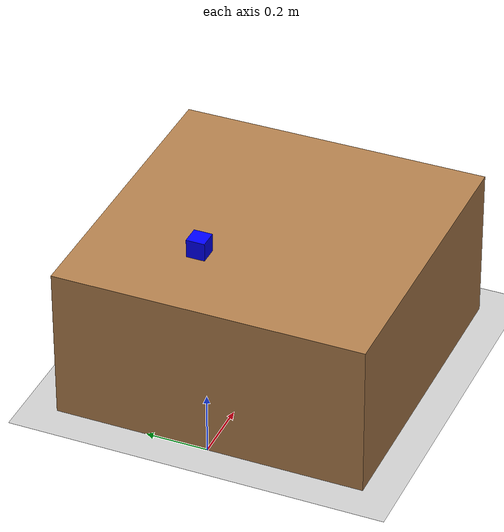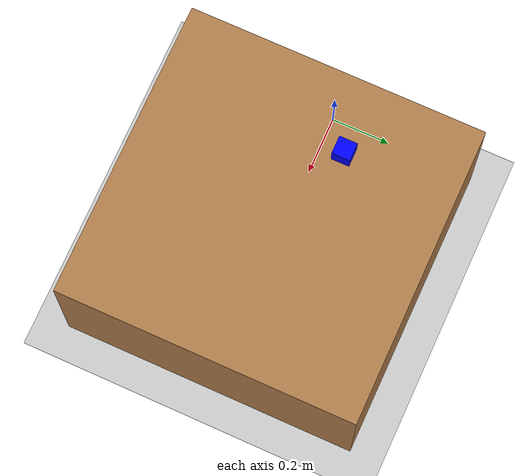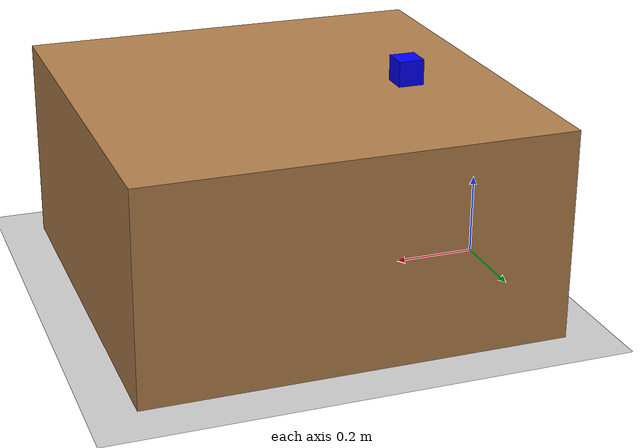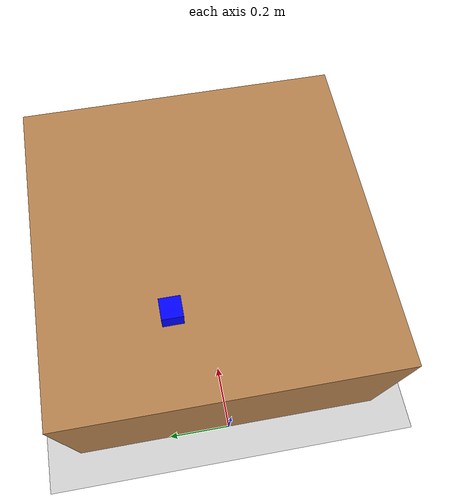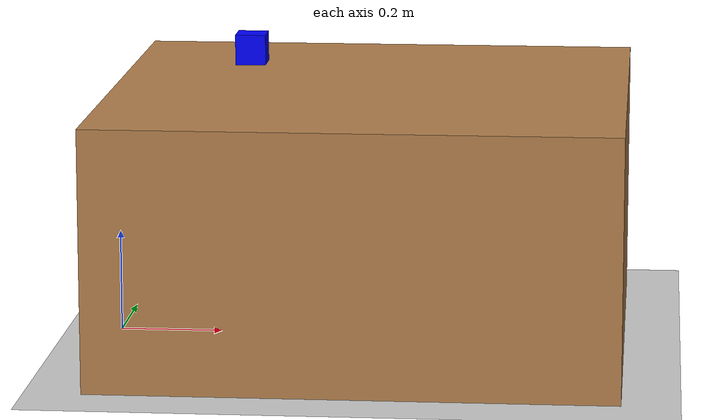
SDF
<?xml version="1.0" ?>
<sdf version="1.5">
  <world name="default">

    <!-- A global light source -->
    <include>
      <uri>model://sun</uri>
    </include>
    <!-- A ground plane -->
    <include>
      <uri>model://ground_plane</uri>
    </include>

    <!-- Ein Block als Tisch -->
    <model name="table">
      <static>true</static>
      <pose>0.5 0 0.25 0 0 0</pose>
      <link name="link">
        <collision name="collision">
          <geometry>
            <box>
              <size>1.0 1.0 0.5</size>
            </box>
          </geometry>
        </collision>
        <visual name="visual">
          <geometry>
            <box>
              <size>1.0 1.0 0.5</size>
            </box>
          </geometry>
          <material>
            <ambient>0.7 0.5 0.3 1</ambient>
            <diffuse>0.7 0.5 0.3 1</diffuse>
            <specular>0.1 0.1 0.1 1</specular>
          </material>
        </visual>
      </link>
    </model>

   <!-- Ein Quadrat (Würfel) als Objekt zum Greifen -->
<model name="box">
  <pose>0.25 0.13 0.55 0 0 0</pose>
  <link name="link">
    <collision name="collision">
      <geometry>
        <box>
          <size>0.06 0.06 0.06</size>
        </box>
      </geometry>
    </collision>
<surface>
  <friction>
    <ode>
      <mu>100</mu>
      <mu2>100</mu2>
    </ode>
  </friction>
  <contact>
    <ode>
      <kp>10000000.0</kp>
      <kd>1.0</kd>
      <min_depth>0.001</min_depth>
    </ode>
  </contact>
</surface>
    <visual name="visual">
      <geometry>
        <box>
          <size>0.06 0.06 0.06</size>
        </box>
      </geometry>
      <material>
        <ambient>0 0 1 1</ambient>  <!-- Blau -->
        <diffuse>0 0 1 1</diffuse>
        <specular>0.1 0.1 0.1 1</specular>
      </material>
    </visual>
    <inertial>
      <mass>0.05</mass>
      <inertia>
        <ixx>0.00001</ixx>
        <ixy>0</ixy>
        <ixz>0</ixz>
        <iyy>0.00001</iyy>
        <iyz>0</iyz>
        <izz>0.00001</izz>
      </inertia>
    </inertial>
  </link>
</model>

    <physics type="ode">
      <real_time_update_rate>1000.0</real_time_update_rate>
      <max_step_size>0.001</max_step_size>
      <real_time_factor>1</real_time_factor>
      <ode>
        <solver>
          <type>quick</type>
          <iters>150</iters>
          <precon_iters>0</precon_iters>
          <sor>1.400000</sor>
          <use_dynamic_moi_rescaling>1</use_dynamic_moi_rescaling>
        </solver>
        <constraints>
          <cfm>0.00001</cfm>
          <erp>0.2</erp>
          <contact_max_correcting_vel>2000.000000</contact_max_correcting_vel>
          <contact_surface_layer>0.01000</contact_surface_layer>
        </constraints>
      </ode>
    </physics>
  </world>
</sdf>
